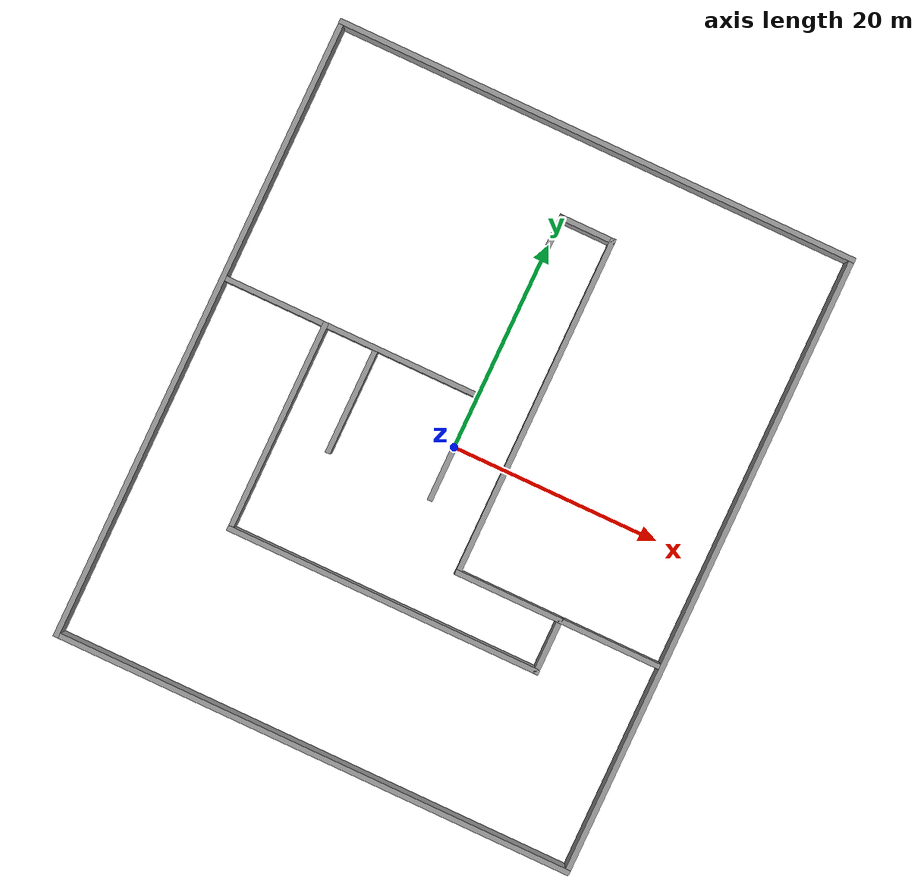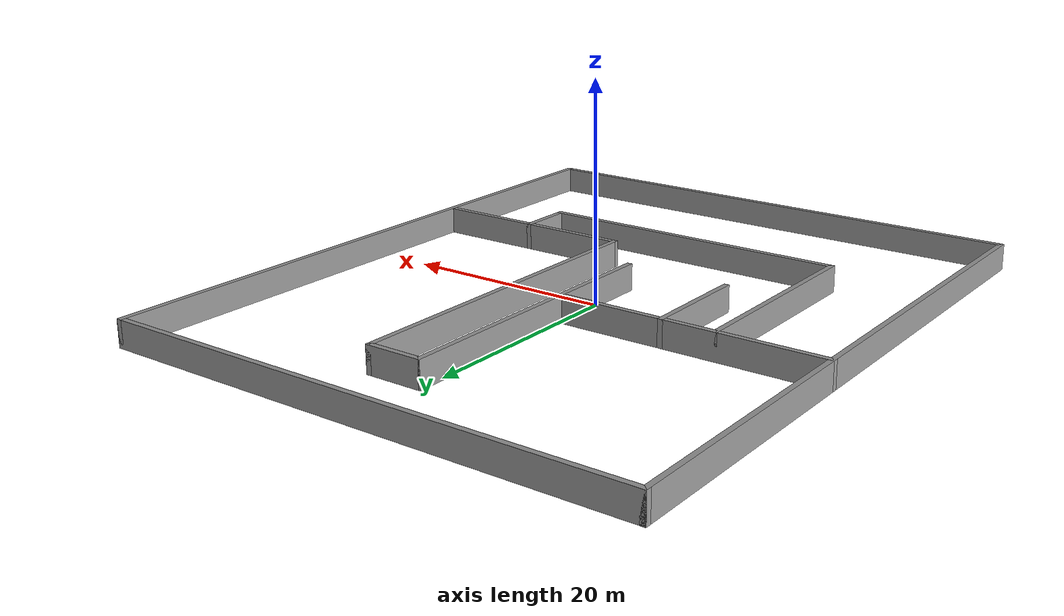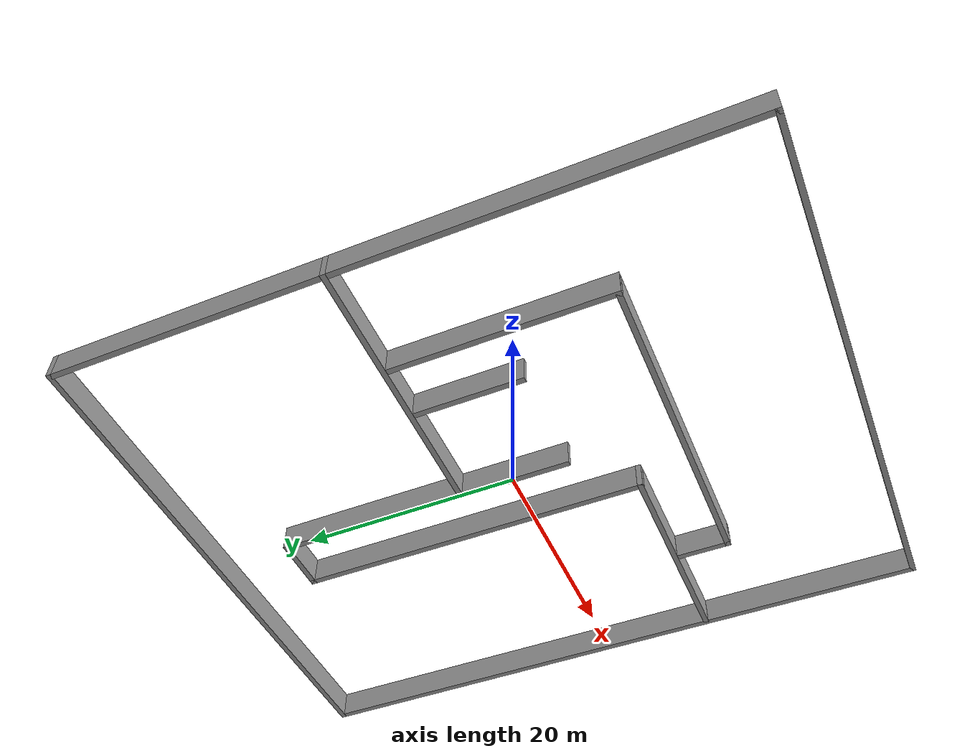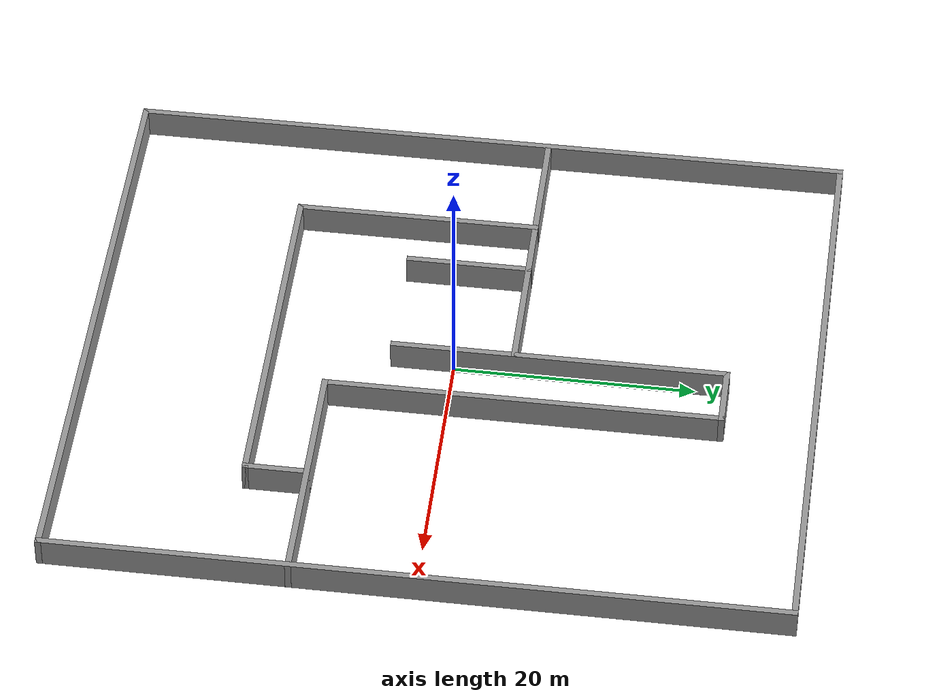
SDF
<?xml version='1.0'?>
<sdf version='1.6'>
  <model name='test1'>
    <pose frame=''>0 0 0 0 -0 0</pose>
    <link name='Wall_26'>
      <collision name='Wall_26_Collision'>
        <geometry>
          <box>
            <size>50.5 0.5 2.5</size>
          </box>
        </geometry>
        <pose frame=''>0 0 1.25 0 -0 0</pose>
      </collision>
      <visual name='Wall_26_Visual'>
        <pose frame=''>0 0 1.25 0 -0 0</pose>
        <geometry>
          <box>
            <size>50.5 0.5 2.5</size>
          </box>
        </geometry>
        <material>
          <script>
            <uri>file://media/materials/scripts/gazebo.material</uri>
            <name>Gazebo/Grey</name>
          </script>
          <ambient>1 1 1 1</ambient>
        </material>
        <meta>
          <layer>0</layer>
        </meta>
      </visual>
      <pose frame=''>0 30 0 0 -0 0</pose>
    </link>
    <link name='Wall_29'>
      <collision name='Wall_29_Collision'>
        <geometry>
          <box>
            <size>60.5 0.5 2.5</size>
          </box>
        </geometry>
        <pose frame=''>0 0 1.25 0 -0 0</pose>
      </collision>
      <visual name='Wall_29_Visual'>
        <pose frame=''>0 0 1.25 0 -0 0</pose>
        <geometry>
          <box>
            <size>60.5 0.5 2.5</size>
          </box>
        </geometry>
        <material>
          <script>
            <uri>file://media/materials/scripts/gazebo.material</uri>
            <name>Gazebo/Grey</name>
          </script>
          <ambient>1 1 1 1</ambient>
        </material>
        <meta>
          <layer>0</layer>
        </meta>
      </visual>
      <pose frame=''>-25 0 0 0 -0 -1.5708</pose>
    </link>
    <link name='Wall_31'>
      <collision name='Wall_31_Collision'>
        <geometry>
          <box>
            <size>50.5 0.5 2.5</size>
          </box>
        </geometry>
        <pose frame=''>0 0 1.25 0 -0 0</pose>
      </collision>
      <visual name='Wall_31_Visual'>
        <pose frame=''>0 0 1.25 0 -0 0</pose>
        <geometry>
          <box>
            <size>50.5 0.5 2.5</size>
          </box>
        </geometry>
        <material>
          <script>
            <uri>file://media/materials/scripts/gazebo.material</uri>
            <name>Gazebo/Grey</name>
          </script>
          <ambient>1 1 1 1</ambient>
        </material>
        <meta>
          <layer>0</layer>
        </meta>
      </visual>
      <pose frame=''>0 -30 0 0 -0 0</pose>
    </link>
    <link name='Wall_33'>
      <collision name='Wall_33_Collision'>
        <geometry>
          <box>
            <size>60.5 0.5 2.5</size>
          </box>
        </geometry>
        <pose frame=''>0 0 1.25 0 -0 0</pose>
      </collision>
      <visual name='Wall_33_Visual'>
        <pose frame=''>0 0 1.25 0 -0 0</pose>
        <geometry>
          <box>
            <size>60.5 0.5 2.5</size>
          </box>
        </geometry>
        <material>
          <script>
            <uri>file://media/materials/scripts/gazebo.material</uri>
            <name>Gazebo/Grey</name>
          </script>
          <ambient>1 1 1 1</ambient>
        </material>
        <meta>
          <layer>0</layer>
        </meta>
      </visual>
      <pose frame=''>25 0 0 0 -0 -1.5708</pose>
    </link>
    <link name='Wall_35'>
      <collision name='Wall_35_Collision'>
        <geometry>
          <box>
            <size>30.5 0.5 2.5</size>
          </box>
        </geometry>
        <pose frame=''>0 0 1.25 0 -0 0</pose>
      </collision>
      <visual name='Wall_35_Visual'>
        <pose frame=''>0 0 1.25 0 -0 0</pose>
        <geometry>
          <box>
            <size>30.5 0.5 2.5</size>
          </box>
        </geometry>
        <material>
          <script>
            <uri>file://media/materials/scripts/gazebo.material</uri>
            <name>Gazebo/Grey</name>
          </script>
          <ambient>1 1 1 1</ambient>
        </material>
        <meta>
          <layer>0</layer>
        </meta>
      </visual>
      <pose frame=''>0 -15 0 0 -0 0</pose>
    </link>
    <link name='Wall_38'>
      <collision name='Wall_38_Collision'>
        <geometry>
          <box>
            <size>5.5 0.5 2.5</size>
          </box>
        </geometry>
        <pose frame=''>0 0 1.25 0 -0 0</pose>
      </collision>
      <visual name='Wall_38_Visual'>
        <pose frame=''>0 0 1.25 0 -0 0</pose>
        <geometry>
          <box>
            <size>5.5 0.5 2.5</size>
          </box>
        </geometry>
        <material>
          <script>
            <uri>file://media/materials/scripts/gazebo.material</uri>
            <name>Gazebo/Grey</name>
          </script>
          <ambient>1 1 1 1</ambient>
        </material>
        <meta>
          <layer>0</layer>
        </meta>
      </visual>
      <pose frame=''>15 -12.5 0 0 -0 1.5708</pose>
    </link>
    <link name='Wall_40'>
      <collision name='Wall_40_Collision'>
        <geometry>
          <box>
            <size>20.5 0.5 2.5</size>
          </box>
        </geometry>
        <pose frame=''>0 0 1.25 0 -0 0</pose>
      </collision>
      <visual name='Wall_40_Visual'>
        <pose frame=''>0 0 1.25 0 -0 0</pose>
        <geometry>
          <box>
            <size>20.5 0.5 2.5</size>
          </box>
        </geometry>
        <material>
          <script>
            <uri>file://media/materials/scripts/gazebo.material</uri>
            <name>Gazebo/Grey</name>
          </script>
          <ambient>1 1 1 1</ambient>
        </material>
        <meta>
          <layer>0</layer>
        </meta>
      </visual>
      <pose frame=''>15 -10 0 0 -0 3.14159</pose>
    </link>
    <link name='Wall_42'>
      <collision name='Wall_42_Collision'>
        <geometry>
          <box>
            <size>33 0.5 2.5</size>
          </box>
        </geometry>
        <pose frame=''>0 0 1.25 0 -0 0</pose>
      </collision>
      <visual name='Wall_42_Visual'>
        <pose frame=''>0 0 1.25 0 -0 0</pose>
        <geometry>
          <box>
            <size>33 0.5 2.5</size>
          </box>
        </geometry>
        <material>
          <script>
            <uri>file://media/materials/scripts/gazebo.material</uri>
            <name>Gazebo/Grey</name>
          </script>
          <ambient>1 1 1 1</ambient>
        </material>
        <meta>
          <layer>0</layer>
        </meta>
      </visual>
      <pose frame=''>5 6.25 0 0 -0 1.5708</pose>
    </link>
    <link name='Wall_44'>
      <collision name='Wall_44_Collision'>
        <geometry>
          <box>
            <size>20.5 0.5 2.5</size>
          </box>
        </geometry>
        <pose frame=''>0 0 1.25 0 -0 0</pose>
      </collision>
      <visual name='Wall_44_Visual'>
        <pose frame=''>0 0 1.25 0 -0 0</pose>
        <geometry>
          <box>
            <size>20.5 0.5 2.5</size>
          </box>
        </geometry>
        <material>
          <script>
            <uri>file://media/materials/scripts/gazebo.material</uri>
            <name>Gazebo/Grey</name>
          </script>
          <ambient>1 1 1 1</ambient>
        </material>
        <meta>
          <layer>0</layer>
        </meta>
      </visual>
      <pose frame=''>-15 -5 0 0 -0 -1.5708</pose>
    </link>
    <link name='Wall_46'>
      <collision name='Wall_46_Collision'>
        <geometry>
          <box>
            <size>25.5 0.5 2.5</size>
          </box>
        </geometry>
        <pose frame=''>0 0 1.25 0 -0 0</pose>
      </collision>
      <visual name='Wall_46_Visual'>
        <pose frame=''>0 0 1.25 0 -0 0</pose>
        <geometry>
          <box>
            <size>25.5 0.5 2.5</size>
          </box>
        </geometry>
        <material>
          <script>
            <uri>file://media/materials/scripts/gazebo.material</uri>
            <name>Gazebo/Grey</name>
          </script>
          <ambient>1 1 1 1</ambient>
        </material>
        <meta>
          <layer>0</layer>
        </meta>
      </visual>
      <pose frame=''>-12.5 5 0 0 -0 0</pose>
    </link>
    <link name='Wall_48'>
      <collision name='Wall_48_Collision'>
        <geometry>
          <box>
            <size>28 0.5 2.5</size>
          </box>
        </geometry>
        <pose frame=''>0 0 1.25 0 -0 0</pose>
      </collision>
      <visual name='Wall_48_Visual'>
        <pose frame=''>0 0 1.25 0 -0 0</pose>
        <geometry>
          <box>
            <size>28 0.5 2.5</size>
          </box>
        </geometry>
        <material>
          <script>
            <uri>file://media/materials/scripts/gazebo.material</uri>
            <name>Gazebo/Grey</name>
          </script>
          <ambient>1 1 1 1</ambient>
        </material>
        <meta>
          <layer>0</layer>
        </meta>
      </visual>
      <pose frame=''>0 8.75 0 0 -0 1.5708</pose>
    </link>
    <link name='Wall_50'>
      <collision name='Wall_50_Collision'>
        <geometry>
          <box>
            <size>10.5 0.5 2.5</size>
          </box>
        </geometry>
        <pose frame=''>0 0 1.25 0 -0 0</pose>
      </collision>
      <visual name='Wall_50_Visual'>
        <pose frame=''>0 0 1.25 0 -0 0</pose>
        <geometry>
          <box>
            <size>10.5 0.5 2.5</size>
          </box>
        </geometry>
        <material>
          <script>
            <uri>file://media/materials/scripts/gazebo.material</uri>
            <name>Gazebo/Grey</name>
          </script>
          <ambient>1 1 1 1</ambient>
        </material>
        <meta>
          <layer>0</layer>
        </meta>
      </visual>
      <pose frame=''>-10 0 0 0 -0 -1.5708</pose>
    </link>
    <link name='Wall_52'>
      <collision name='Wall_52_Collision'>
        <geometry>
          <box>
            <size>5.5 0.5 2.5</size>
          </box>
        </geometry>
        <pose frame=''>0 0 1.25 0 -0 0</pose>
      </collision>
      <visual name='Wall_52_Visual'>
        <pose frame=''>0 0 1.25 0 -0 0</pose>
        <geometry>
          <box>
            <size>5.5 0.5 2.5</size>
          </box>
        </geometry>
        <material>
          <script>
            <uri>file://media/materials/scripts/gazebo.material</uri>
            <name>Gazebo/Grey</name>
          </script>
          <ambient>1 1 1 1</ambient>
        </material>
        <meta>
          <layer>0</layer>
        </meta>
      </visual>
      <pose frame=''>2.5 22.5 0 0 -0 0</pose>
    </link>
    <static>1</static>
  </model>
</sdf>
